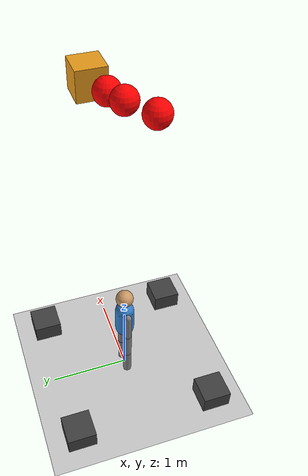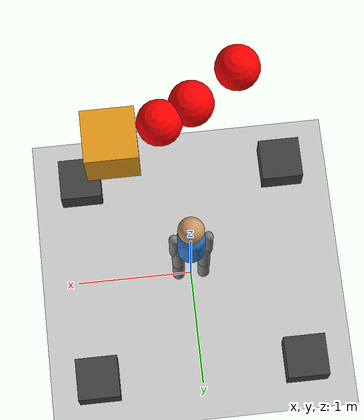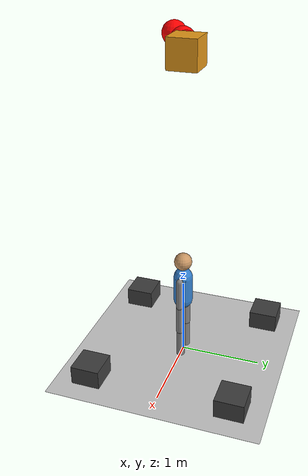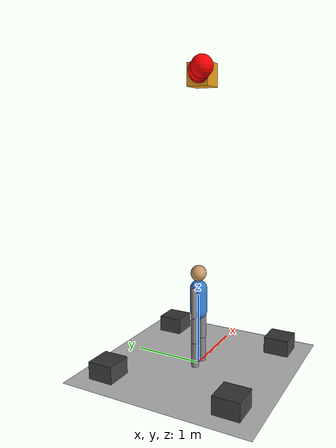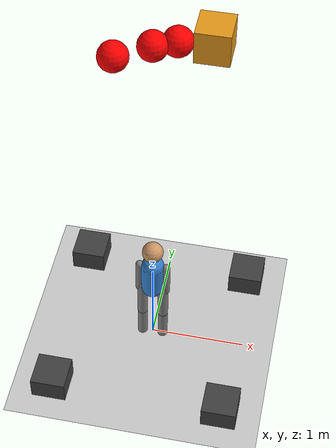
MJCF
<mujoco model="proportional_humanoid">
  <compiler angle="radian"/>
  <option timestep="0.002" gravity="0 0 -9.81"/>
  <default>
    <geom condim="3" friction="1 0.1 0.1"/>
    <joint damping="0.1"/>
  </default>
  <worldbody>
    <light pos="0 0 5" dir="0 0 -1" diffuse="1 1 1" specular="0.3 0.3 0.3"/>
    <geom name="floor" type="plane" size="10 10 0.1" rgba="0.8 0.8 0.8 1"/>

    <body pos="-0.9 -0.9 0.12">
      <geom type="box" size="0.18 0.18 0.12" rgba="0.25 0.25 0.25 1"/>
    </body>
    <body pos="0.9 -0.9 0.12">
      <geom type="box" size="0.18 0.18 0.12" rgba="0.25 0.25 0.25 1"/>
    </body>
    <body pos="-0.9 0.9 0.12">
      <geom type="box" size="0.18 0.18 0.12" rgba="0.25 0.25 0.25 1"/>
    </body>
    <body pos="0.9 0.9 0.12">
      <geom type="box" size="0.18 0.18 0.12" rgba="0.25 0.25 0.25 1"/>
    </body>

    <body name="ball1" pos="0 0 4.0">
      <geom type="sphere" size="0.14" rgba="1 0 0 1"/>
      <joint type="free"/>
    </body>
    <body name="ball2" pos="0.2 0.1 4.0">
      <geom type="sphere" size="0.14" rgba="1 0 0 1"/>
      <joint type="free"/>
    </body>
    <body name="ball3" pos="-0.3 -0.2 4.0">
      <geom type="sphere" size="0.14" rgba="1 0 0 1"/>
      <joint type="free"/>
    </body>

    <body name="cube_obs" pos="0.5 0.2 4.0">
      <geom type="box" size="0.16 0.16 0.16" rgba="0.9 0.6 0.1 1"/>
      <joint type="free"/>
    </body>

    <body name="base" pos="0 0 0">
      <joint name="slide_x" type="slide" axis="1 0 0"/>
      <joint name="slide_y" type="slide" axis="0 1 0"/>
      <body name="torso" pos="0 0 1.1">
        <geom type="capsule" fromto="0 0 0 0 0 -0.32" size="0.12" rgba="0.2 0.5 0.8 1"/>
        <body name="head" pos="0 0 0.22">
          <geom type="sphere" size="0.11" rgba="0.8 0.6 0.4 1"/>
        </body>

        <body name="left_shoulder" pos="-0.14 0 0">
          <joint name="j_larm" type="hinge" axis="1 0 0" range="-0.7 0.7"/>
          <geom type="capsule" fromto="0 0 0 0 0 -0.36" size="0.042" rgba="0.5 0.5 0.5 1"/>
        </body>
        <body name="right_shoulder" pos="0.14 0 0">
          <joint name="j_rarm" type="hinge" axis="1 0 0" range="-0.7 0.7"/>
          <geom type="capsule" fromto="0 0 0 0 0 -0.36" size="0.042" rgba="0.5 0.5 0.5 1"/>
        </body>

        <body name="left_hip" pos="-0.11 0 -0.32">
          <joint name="left_hip" type="hinge" axis="1 0 0" range="-0.2 0.2"/>
          <geom type="capsule" fromto="0 0 0 0 0 -0.42" size="0.055" rgba="0.5 0.5 0.5 1"/>
          <body name="left_knee" pos="0 0 -0.42">
            <joint name="left_knee" type="hinge" axis="1 0 0" range="0 0.0"/>
            <geom type="capsule" fromto="0 0 0 0 0 -0.42" size="0.052" rgba="0.5 0.5 0.5 1"/>
            <body name="left_ankle" pos="0 0 -0.42">
              <joint name="left_ankle" type="hinge" axis="1 0 0" range="-0.2 0.2"/>
              <geom type="box" size="0.11 0.05 0.025" pos="0 0 -0.025" rgba="0.3 0.3 0.3 1"/>
            </body>
          </body>
        </body>

        <body name="right_hip" pos="0.11 0 -0.32">
          <joint name="right_hip" type="hinge" axis="1 0 0" range="-0.2 0.2"/>
          <geom type="capsule" fromto="0 0 0 0 0 -0.42" size="0.055" rgba="0.5 0.5 0.5 1"/>
          <body name="right_knee" pos="0 0 -0.42">
            <joint name="right_knee" type="hinge" axis="1 0 0" range="0 0.0"/>
            <geom type="capsule" fromto="0 0 0 0 0 -0.42" size="0.052" rgba="0.5 0.5 0.5 1"/>
            <body name="right_ankle" pos="0 0 -0.42">
              <joint name="right_ankle" type="hinge" axis="1 0 0" range="-0.2 0.2"/>
              <geom type="box" size="0.11 0.05 0.025" pos="0 0 -0.025" rgba="0.3 0.3 0.3 1"/>
            </body>
          </body>
        </body>
      </body>
    </body>
  </worldbody>
</mujoco>
